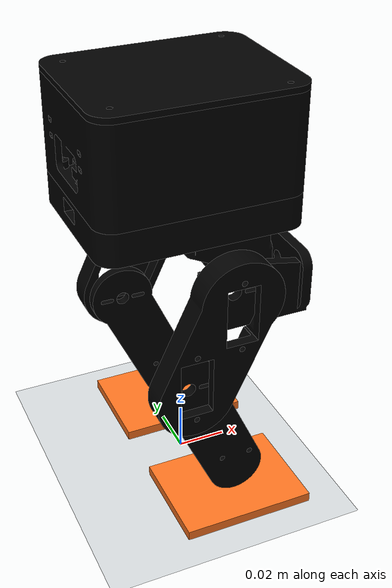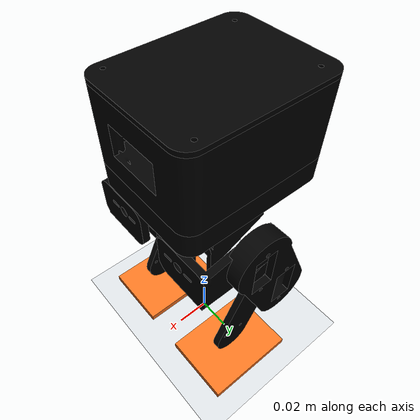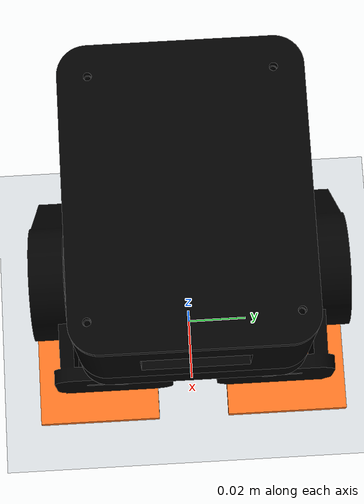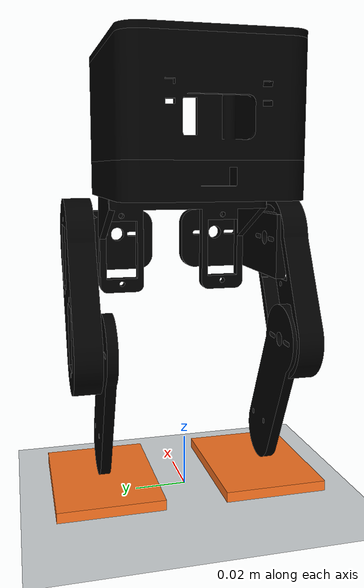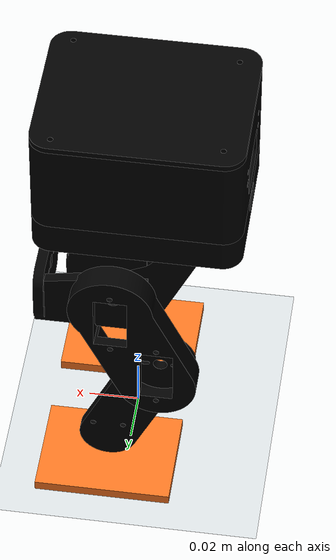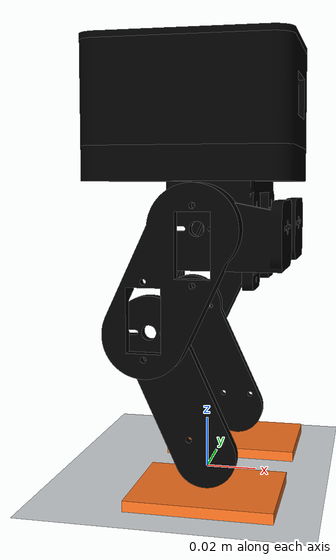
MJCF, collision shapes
<mujoco model="Duckbert v1.2 - 6 SG90">
  <compiler angle="degree" meshdir="meshes" />
  <option timestep=".002" gravity="0 0 -9.81" integrator="implicitfast" />
  <visual>
    <global offwidth="1600" offheight="1400" />
  </visual>
  <asset>
    <mesh name="01_trunk_tub" file="01_trunk_tub.stl" scale=".001 .001 .001" />
    <mesh name="02_trunk_lid" file="02_trunk_lid.stl" scale=".001 .001 .001" />
    <mesh name="03_hip_block" file="03_hip_block.stl" scale=".001 .001 .001" />
    <mesh name="04_hip_bracket_L" file="04_hip_bracket_L.stl" scale=".001 .001 .001" />
    <mesh name="04_hip_bracket_R" file="04_hip_bracket_R.stl" scale=".001 .001 .001" />
    <mesh name="05_thigh_L" file="05_thigh_L.stl" scale=".001 .001 .001" />
    <mesh name="05_thigh_R" file="05_thigh_R.stl" scale=".001 .001 .001" />
    <mesh name="06_shin_L" file="06_shin_L.stl" scale=".001 .001 .001" />
    <mesh name="06_shin_R" file="06_shin_R.stl" scale=".001 .001 .001" />
    <mesh name="07_foot_L" file="07_foot_L.stl" scale=".001 .001 .001" />
    <mesh name="07_foot_R" file="07_foot_R.stl" scale=".001 .001 .001" />
    <mesh name="15_lipo_cassette" file="15_lipo_cassette.stl" scale=".001 .001 .001" />
    <mesh name="L_hip_roll" file="L_hip_roll.stl" scale=".001 .001 .001" />
    <mesh name="L_hip_roll_stock_horn" file="L_hip_roll_stock_horn.stl" scale=".001 .001 .001" />
    <mesh name="L_hip_pitch" file="L_hip_pitch.stl" scale=".001 .001 .001" />
    <mesh name="L_hip_pitch_stock_horn" file="L_hip_pitch_stock_horn.stl" scale=".001 .001 .001" />
    <mesh name="L_knee" file="L_knee.stl" scale=".001 .001 .001" />
    <mesh name="L_knee_stock_horn" file="L_knee_stock_horn.stl" scale=".001 .001 .001" />
    <mesh name="R_hip_roll" file="R_hip_roll.stl" scale=".001 .001 .001" />
    <mesh name="R_hip_roll_stock_horn" file="R_hip_roll_stock_horn.stl" scale=".001 .001 .001" />
    <mesh name="R_hip_pitch" file="R_hip_pitch.stl" scale=".001 .001 .001" />
    <mesh name="R_hip_pitch_stock_horn" file="R_hip_pitch_stock_horn.stl" scale=".001 .001 .001" />
    <mesh name="R_knee" file="R_knee.stl" scale=".001 .001 .001" />
    <mesh name="R_knee_stock_horn" file="R_knee_stock_horn.stl" scale=".001 .001 .001" />
    <mesh name="PCA9685_driver_envelope" file="PCA9685_driver_envelope.stl" scale=".001 .001 .001" />
    <mesh name="ESP32_C3_SuperMini_envelope" file="ESP32_C3_SuperMini_envelope.stl" scale=".001 .001 .001" />
    <mesh name="regulator_5V_envelope" file="regulator_5V_envelope.stl" scale=".001 .001 .001" />
    <mesh name="IMU_GY521_envelope" file="IMU_GY521_envelope.stl" scale=".001 .001 .001" />
    <mesh name="battery_lipo_65x55x10" file="battery_lipo_65x55x10.stl" scale=".001 .001 .001" />
    <mesh name="OLED_1in3_envelope" file="OLED_1in3_envelope.stl" scale=".001 .001 .001" />
    <mesh name="OLED_screen" file="OLED_screen.stl" scale=".001 .001 .001" />
    <mesh name="OLED_eye_L" file="OLED_eye_L.stl" scale=".001 .001 .001" />
    <mesh name="OLED_eye_R" file="OLED_eye_R.stl" scale=".001 .001 .001" />
  </asset>
  <worldbody>
    <light pos=".2 -.3 .7" dir="-.2 .3 -.7" />
    <geom name="floor" type="plane" size="2 2 .02" rgba=".85 .87 .88 1" friction=".9 .01 .001" />
    <body name="torso" pos="0 0 0.117">
      <freejoint name="root" />
      <inertial pos="-0.001861182285 0.0003027012215 0.01618391911" mass="0.2498654959" fullinertia="0.0001806500972 0.0002231665725 0.0002115138332 1.478275664e-06 1.736350935e-05 -1.017510217e-06" />
      <camera name="follow_cam" mode="trackcom" pos=".42 -.52 .20" xyaxes=".784 .621 0 -.18 .227 .957" />
      <site name="imu" pos="-.019 .018 .010" size=".001" rgba="0 0 0 0" />
      <body name="L_hip" pos="0.0225 0.0175 -0.017">
        <joint name="L_hip_roll" axis="1 0 0" range="-16 16" damping=".008" armature=".000004" frictionloss=".003" />
        <inertial pos="-0.002179288492 0.01310857138 -0.00257525285" mass="0.009209176259" fullinertia="1.237042966e-06 2.188658574e-06 2.538526081e-06 6.786713005e-07 1.349885723e-08 7.852725237e-09" />
        <body name="L_thigh" pos="-0.0185 0.025 0">
          <joint name="L_hip_pitch" axis="0 1 0" range="-45 45" damping=".008" armature=".000004" frictionloss=".003" />
          <inertial pos="-0.008734915208 0.01001509078 -0.01864760042" mass="0.02950583517" fullinertia="1.089180979e-05 1.278587944e-05 5.413140807e-06 2.84307728e-08 -3.771108365e-06 6.069072764e-08" />
          <body name="L_shin" pos="-0.0178 0 -0.038">
            <joint name="L_knee" axis="0 1 0" range="-50 50" damping=".008" armature=".000004" frictionloss=".003" />
            <inertial pos="0.01637228733 -0.008447178244 -0.04296047535" mass="0.02152337266" fullinertia="1.195977839e-05 1.454662314e-05 5.595276217e-06 2.609057167e-07 3.356029033e-06 -8.266220443e-07" />
            <geom name="L_sole" type="box" size=".027 .0205 .002" pos="0.0208 -0.01 -0.06" rgba="1 .46 .13 0" friction=".9 .01 .001" mass="0" contype="2" conaffinity="1" />
            <site name="L_foot_touch" type="box" size=".027 .0205 .0021" pos="0.0208 -0.01 -0.06" rgba="0 0 0 0" />
            <geom type="mesh" mesh="06_shin_L" pos="0.0138 -0.0425 -0.062" rgba="0.2158605001 0 0.0144438436 1" contype="0" conaffinity="0" group="1" mass="0" />
            <geom name="06_shin_L_collision" type="mesh" mesh="06_shin_L" pos="0.0138 -0.0425 -0.062" contype="2" conaffinity="1" group="3" rgba="0 0 0 0" friction=".9 .01 .001" mass="0" />
            <geom type="mesh" mesh="07_foot_L" pos="0.0138 -0.0425 -0.062" rgba="0.2158605001 0 0.0144438436 1" contype="0" conaffinity="0" group="1" mass="0" />
            <geom type="mesh" mesh="L_knee_stock_horn" pos="0.0138 -0.0425 -0.062" rgba="0.2158605001 0 0.0144438436 1" contype="0" conaffinity="0" group="1" mass="0" />
          </body>
          <geom type="mesh" mesh="05_thigh_L" pos="-0.004 -0.0425 -0.1" rgba="0.2158605001 0 0.0144438436 1" contype="0" conaffinity="0" group="1" mass="0" />
          <geom name="05_thigh_L_collision" type="mesh" mesh="05_thigh_L" pos="-0.004 -0.0425 -0.1" contype="2" conaffinity="1" group="3" rgba="0 0 0 0" friction=".9 .01 .001" mass="0" />
          <geom type="mesh" mesh="L_hip_pitch" pos="-0.004 -0.0425 -0.1" rgba="0.2158605001 0 0.0144438436 1" contype="0" conaffinity="0" group="1" mass="0" />
          <geom type="mesh" mesh="L_knee" pos="-0.004 -0.0425 -0.1" rgba="0.2158605001 0 0.0144438436 1" contype="0" conaffinity="0" group="1" mass="0" />
        </body>
        <geom type="mesh" mesh="04_hip_bracket_L" pos="-0.0225 -0.0175 -0.1" rgba="0.2158605001 0 0.0144438436 1" contype="0" conaffinity="0" group="1" mass="0" />
        <geom name="04_hip_bracket_L_collision" type="mesh" mesh="04_hip_bracket_L" pos="-0.0225 -0.0175 -0.1" contype="2" conaffinity="1" group="3" rgba="0 0 0 0" friction=".9 .01 .001" mass="0" />
        <geom type="mesh" mesh="L_hip_roll_stock_horn" pos="-0.0225 -0.0175 -0.1" rgba="0.2158605001 0 0.0144438436 1" contype="0" conaffinity="0" group="1" mass="0" />
        <geom type="mesh" mesh="L_hip_pitch_stock_horn" pos="-0.0225 -0.0175 -0.1" rgba="0.2158605001 0 0.0144438436 1" contype="0" conaffinity="0" group="1" mass="0" />
      </body>
      <body name="R_hip" pos="0.0225 -0.0175 -0.017">
        <joint name="R_hip_roll" axis="1 0 0" range="-16 16" damping=".008" armature=".000004" frictionloss=".003" />
        <inertial pos="-0.002179014054 -0.01310839369 -0.002575256716" mass="0.009209182036" fullinertia="1.237106545e-06 2.188665926e-06 2.538561508e-06 -6.786767556e-07 1.349238316e-08 -7.847891018e-09" />
        <body name="R_thigh" pos="-0.0185 -0.025 0">
          <joint name="R_hip_pitch" axis="0 1 0" range="-45 45" damping=".008" armature=".000004" frictionloss=".003" />
          <inertial pos="-0.008734261075 -0.01001440829 -0.01864571064" mass="0.0295087823" fullinertia="1.089450855e-05 1.278922655e-05 5.414110541e-06 -2.857683772e-08 -3.771992951e-06 -6.111645179e-08" />
          <body name="R_shin" pos="-0.0178 0 -0.038">
            <joint name="R_knee" axis="0 1 0" range="-50 50" damping=".008" armature=".000004" frictionloss=".003" />
            <inertial pos="0.01637214774 0.008447127405 -0.04296000301" mass="0.02152510255" fullinertia="1.196141762e-05 1.454875634e-05 5.596172231e-06 -2.609202588e-07 3.35655132e-06 8.266908008e-07" />
            <geom name="R_sole" type="box" size=".027 .0205 .002" pos="0.0208 0.01 -0.06" rgba="1 .46 .13 0" friction=".9 .01 .001" mass="0" contype="2" conaffinity="1" />
            <site name="R_foot_touch" type="box" size=".027 .0205 .0021" pos="0.0208 0.01 -0.06" rgba="0 0 0 0" />
            <geom type="mesh" mesh="06_shin_R" pos="0.0138 0.0425 -0.062" rgba="0.2158605001 0 0.0144438436 1" contype="0" conaffinity="0" group="1" mass="0" />
            <geom name="06_shin_R_collision" type="mesh" mesh="06_shin_R" pos="0.0138 0.0425 -0.062" contype="2" conaffinity="1" group="3" rgba="0 0 0 0" friction=".9 .01 .001" mass="0" />
            <geom type="mesh" mesh="07_foot_R" pos="0.0138 0.0425 -0.062" rgba="0.2158605001 0 0.0144438436 1" contype="0" conaffinity="0" group="1" mass="0" />
            <geom type="mesh" mesh="R_knee_stock_horn" pos="0.0138 0.0425 -0.062" rgba="0.2158605001 0 0.0144438436 1" contype="0" conaffinity="0" group="1" mass="0" />
          </body>
          <geom type="mesh" mesh="05_thigh_R" pos="-0.004 0.0425 -0.1" rgba="0.2158605001 0 0.0144438436 1" contype="0" conaffinity="0" group="1" mass="0" />
          <geom name="05_thigh_R_collision" type="mesh" mesh="05_thigh_R" pos="-0.004 0.0425 -0.1" contype="2" conaffinity="1" group="3" rgba="0 0 0 0" friction=".9 .01 .001" mass="0" />
          <geom type="mesh" mesh="R_hip_pitch" pos="-0.004 0.0425 -0.1" rgba="0.2158605001 0 0.0144438436 1" contype="0" conaffinity="0" group="1" mass="0" />
          <geom type="mesh" mesh="R_knee" pos="-0.004 0.0425 -0.1" rgba="0.2158605001 0 0.0144438436 1" contype="0" conaffinity="0" group="1" mass="0" />
        </body>
        <geom type="mesh" mesh="04_hip_bracket_R" pos="-0.0225 0.0175 -0.1" rgba="0.2158605001 0 0.0144438436 1" contype="0" conaffinity="0" group="1" mass="0" />
        <geom name="04_hip_bracket_R_collision" type="mesh" mesh="04_hip_bracket_R" pos="-0.0225 0.0175 -0.1" contype="2" conaffinity="1" group="3" rgba="0 0 0 0" friction=".9 .01 .001" mass="0" />
        <geom type="mesh" mesh="R_hip_roll_stock_horn" pos="-0.0225 0.0175 -0.1" rgba="0.2158605001 0 0.0144438436 1" contype="0" conaffinity="0" group="1" mass="0" />
        <geom type="mesh" mesh="R_hip_pitch_stock_horn" pos="-0.0225 0.0175 -0.1" rgba="0.2158605001 0 0.0144438436 1" contype="0" conaffinity="0" group="1" mass="0" />
      </body>
      <geom type="mesh" mesh="01_trunk_tub" pos="-0 -0 -0.117" rgba="0.2158605001 0 0.0144438436 1" contype="0" conaffinity="0" group="1" mass="0" />
      <geom name="01_trunk_tub_collision" type="mesh" mesh="01_trunk_tub" pos="-0 -0 -0.117" contype="2" conaffinity="1" group="3" rgba="0 0 0 0" friction=".9 .01 .001" mass="0" />
      <geom type="mesh" mesh="02_trunk_lid" pos="-0 -0 -0.117" rgba="0.2158605001 0 0.0144438436 1" contype="0" conaffinity="0" group="1" mass="0" />
      <geom name="02_trunk_lid_collision" type="mesh" mesh="02_trunk_lid" pos="-0 -0 -0.117" contype="2" conaffinity="1" group="3" rgba="0 0 0 0" friction=".9 .01 .001" mass="0" />
      <geom type="mesh" mesh="03_hip_block" pos="-0 -0 -0.117" rgba="0.2158605001 0 0.0144438436 1" contype="0" conaffinity="0" group="1" mass="0" />
      <geom name="03_hip_block_collision" type="mesh" mesh="03_hip_block" pos="-0 -0 -0.117" contype="2" conaffinity="1" group="3" rgba="0 0 0 0" friction=".9 .01 .001" mass="0" />
      <geom type="mesh" mesh="15_lipo_cassette" pos="-0 -0 -0.117" rgba="0.2158605001 0 0.0144438436 1" contype="0" conaffinity="0" group="1" mass="0" />
      <geom name="15_lipo_cassette_collision" type="mesh" mesh="15_lipo_cassette" pos="-0 -0 -0.117" contype="2" conaffinity="1" group="3" rgba="0 0 0 0" friction=".9 .01 .001" mass="0" />
      <geom type="mesh" mesh="L_hip_roll" pos="-0 -0 -0.117" rgba="0.2158605001 0 0.0144438436 1" contype="0" conaffinity="0" group="1" mass="0" />
      <geom type="mesh" mesh="R_hip_roll" pos="-0 -0 -0.117" rgba="0.2158605001 0 0.0144438436 1" contype="0" conaffinity="0" group="1" mass="0" />
      <geom type="mesh" mesh="PCA9685_driver_envelope" pos="-0 -0 -0.117" rgba="0.2158605001 0 0.0144438436 1" contype="0" conaffinity="0" group="1" mass="0" />
      <geom type="mesh" mesh="ESP32_C3_SuperMini_envelope" pos="-0 -0 -0.117" rgba="0.2158605001 0 0.0144438436 1" contype="0" conaffinity="0" group="1" mass="0" />
      <geom type="mesh" mesh="regulator_5V_envelope" pos="-0 -0 -0.117" rgba="0.2158605001 0 0.0144438436 1" contype="0" conaffinity="0" group="1" mass="0" />
      <geom type="mesh" mesh="IMU_GY521_envelope" pos="-0 -0 -0.117" rgba="0.2158605001 0 0.0144438436 1" contype="0" conaffinity="0" group="1" mass="0" />
      <geom type="mesh" mesh="battery_lipo_65x55x10" pos="-0 -0 -0.117" rgba="0.2158605001 0 0.0144438436 1" contype="0" conaffinity="0" group="1" mass="0" />
      <geom type="mesh" mesh="OLED_1in3_envelope" pos="-0 -0 -0.117" rgba="0.2158605001 0 0.0144438436 1" contype="0" conaffinity="0" group="1" mass="0" />
      <geom type="mesh" mesh="OLED_screen" pos="-0 -0 -0.117" rgba="0.2158605001 0 0.0144438436 1" contype="0" conaffinity="0" group="1" mass="0" />
      <geom type="mesh" mesh="OLED_eye_L" pos="-0 -0 -0.117" rgba="0.2158605001 0 0.0144438436 1" contype="0" conaffinity="0" group="1" mass="0" />
      <geom type="mesh" mesh="OLED_eye_R" pos="-0 -0 -0.117" rgba="0.2158605001 0 0.0144438436 1" contype="0" conaffinity="0" group="1" mass="0" />
    </body>
  </worldbody>
  <actuator>
    <position name="L_hip_roll_servo" joint="L_hip_roll" kp="1.2" kv=".025" ctrlrange="-0.2792526803 0.2792526803" forcerange="-.177 .177" />
    <position name="L_hip_pitch_servo" joint="L_hip_pitch" kp="1.2" kv=".025" ctrlrange="-0.7853981634 0.7853981634" forcerange="-.177 .177" />
    <position name="L_knee_servo" joint="L_knee" kp="1.2" kv=".025" ctrlrange="-0.872664626 0.872664626" forcerange="-.177 .177" />
    <position name="R_hip_roll_servo" joint="R_hip_roll" kp="1.2" kv=".025" ctrlrange="-0.2792526803 0.2792526803" forcerange="-.177 .177" />
    <position name="R_hip_pitch_servo" joint="R_hip_pitch" kp="1.2" kv=".025" ctrlrange="-0.7853981634 0.7853981634" forcerange="-.177 .177" />
    <position name="R_knee_servo" joint="R_knee" kp="1.2" kv=".025" ctrlrange="-0.872664626 0.872664626" forcerange="-.177 .177" />
  </actuator>
  <sensor>
    <touch name="L_touch" site="L_foot_touch" />
    <touch name="R_touch" site="R_foot_touch" />
    <gyro name="imu_gyro" site="imu" />
    <accelerometer name="imu_accel" site="imu" />
  </sensor>
  <keyframe>
    <key name="neutral_stance" qpos="0 0 0.117 1 0 0 0 0 0 0 0 0 0 " ctrl="0 0 0 0 0 0 " />
  </keyframe>
</mujoco>
